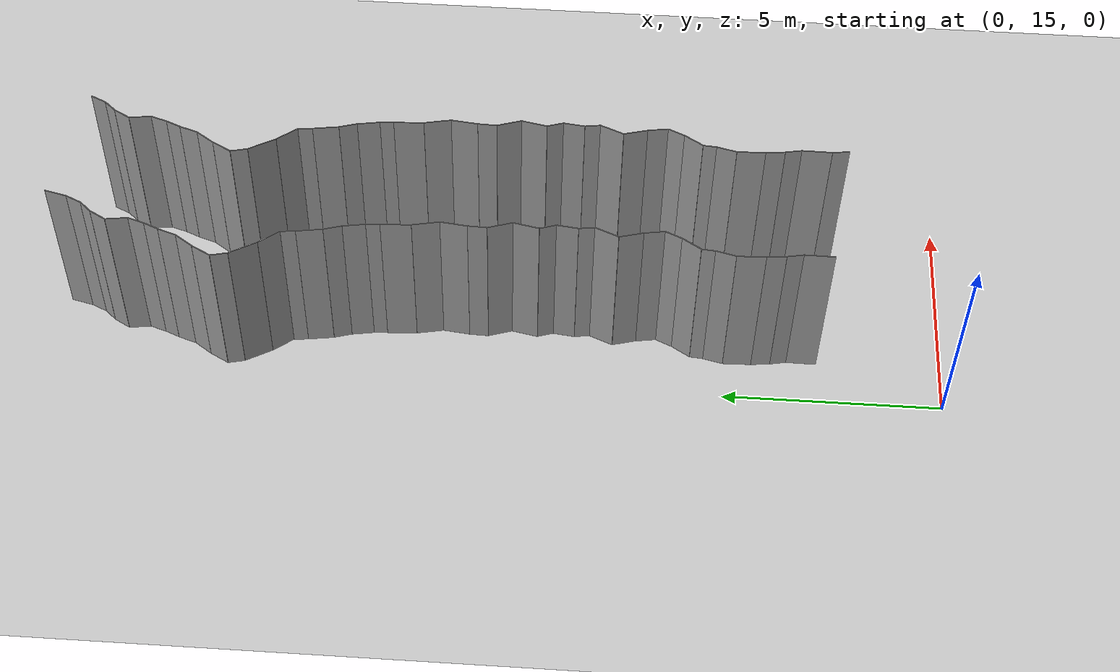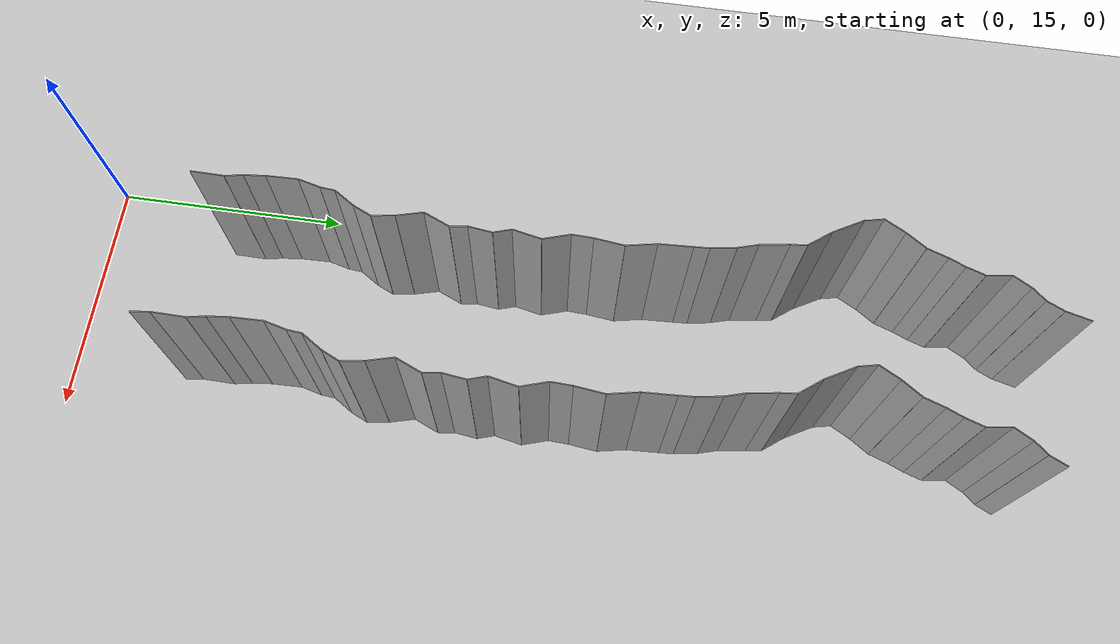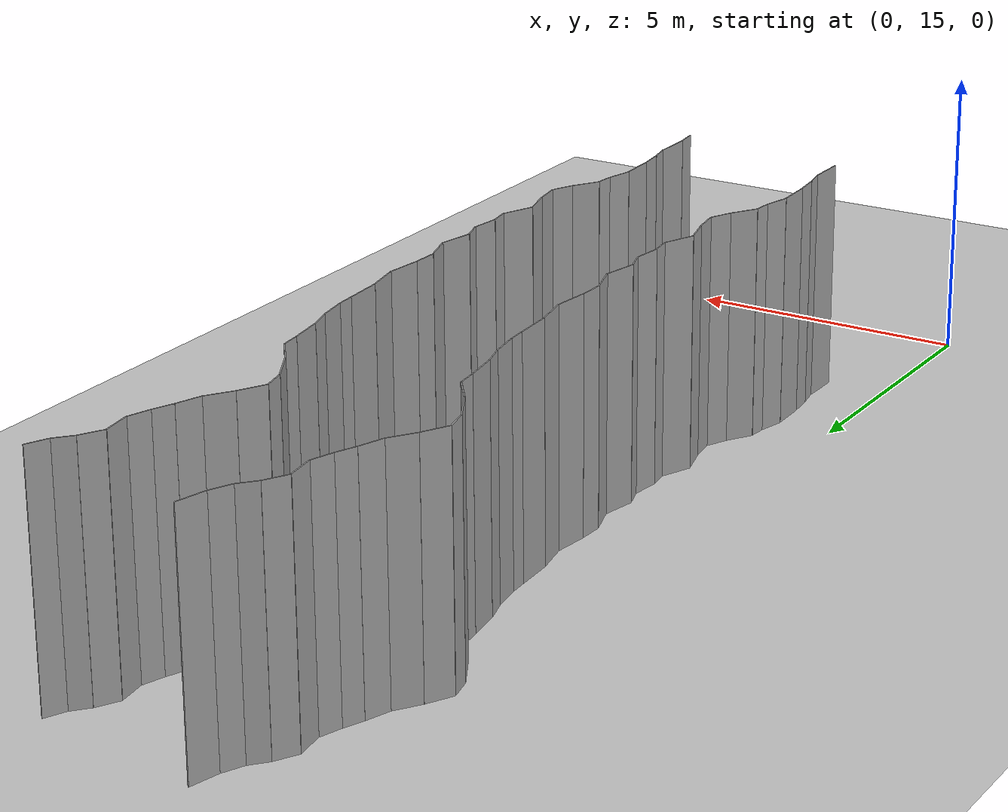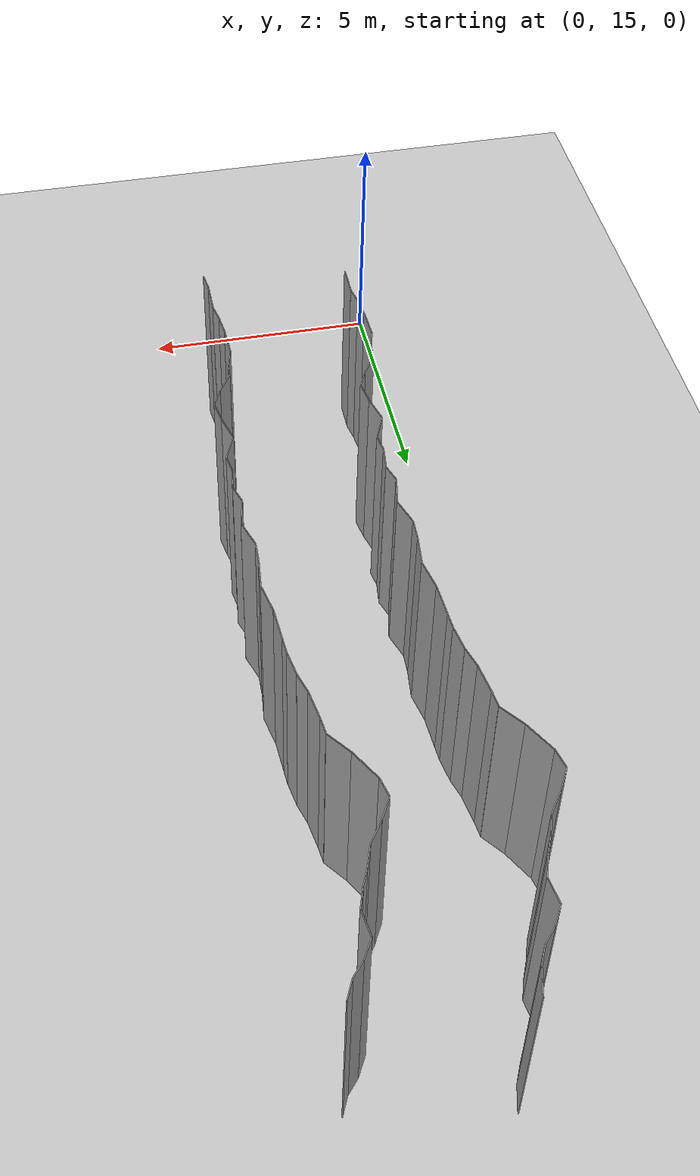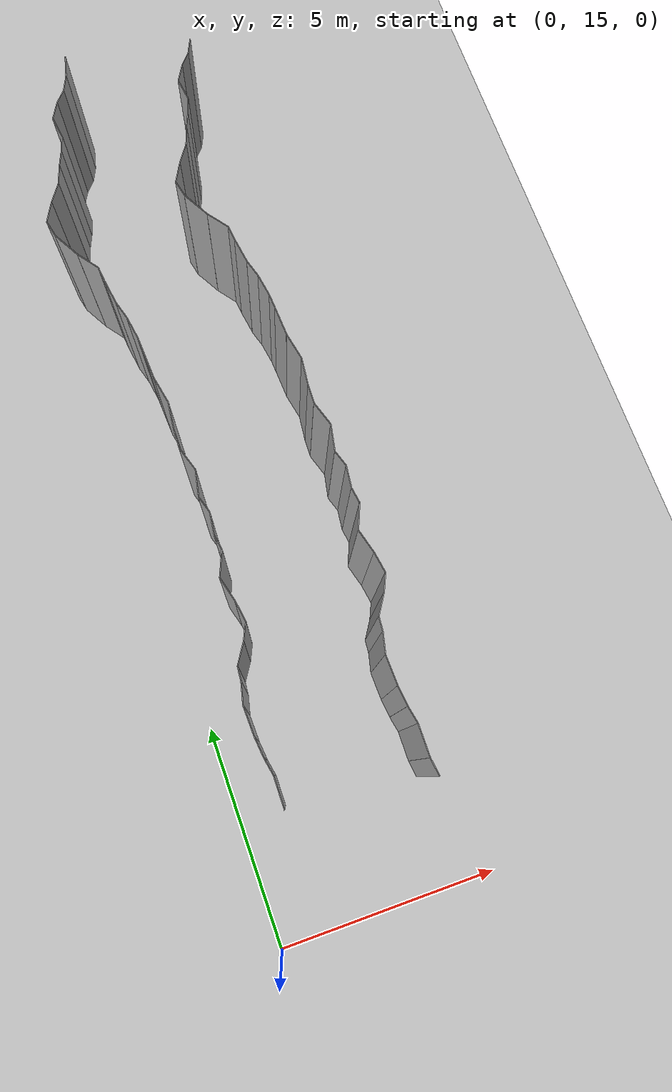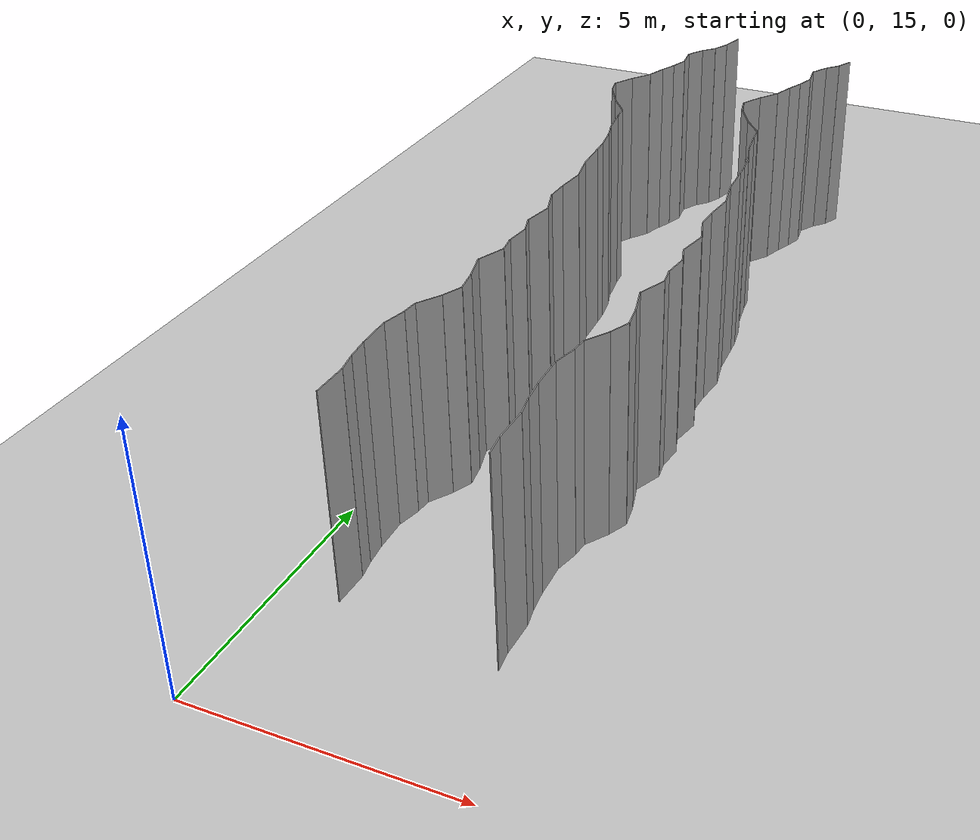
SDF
<sdf version="1.6">
 <world name="default">
  <model name="ground_plane">
   <static>1</static>
   <link name="link">
    <collision name="collision">
     <geometry><plane><normal>0 0 1</normal><size>200 200</size></plane></geometry>
     <surface><friction><ode><mu>100</mu><mu2>50</mu2></ode></friction></surface>
    </collision>
    <visual name="visual">
     <cast_shadows>0</cast_shadows>
     <geometry><plane><normal>0 0 1</normal><size>200 200</size></plane></geometry>
     <material>
      <script><uri>file://media/materials/scripts/gazebo.material</uri><name>Gazebo/Grey</name></script>
     </material>
    </visual>
   </link>
   <pose>0 100 0 0 -0 0</pose>
  </model>
  <model name="wall_73">
   <static>1</static>
   <pose>4.092621282615033 17.648242752760275 2 0 0 0.12257401669416847</pose>
   <link name="link">
    <collision name="collision"><geometry><box><size>0.02 0.392041348736 4</size></box></geometry></collision>
    <visual name="visual">
     <material>
      <script><name>Gazebo/Grey</name><uri>file://media/materials/scripts/gazebo.material</uri></script>
     </material>
     <geometry><box><size>0.02 0.392041348736 4</size></box></geometry>
    </visual>
   </link>
  </model>
  <model name="wall_74">
   <static>1</static>
   <pose>1.0732388111341435 18.187690049476906 2 0 0 -0.013291433530990255</pose>
   <link name="link">
    <collision name="collision"><geometry><box><size>0.02 0.689855584977 4</size></box></geometry></collision>
    <visual name="visual">
     <material>
      <script><name>Gazebo/Grey</name><uri>file://media/materials/scripts/gazebo.material</uri></script>
     </material>
     <geometry><box><size>0.02 0.689855584977 4</size></box></geometry>
    </visual>
   </link>
  </model>
  <model name="wall_75">
   <static>1</static>
   <pose>4.073238811134144 18.187690049476906 2 0 0 -0.013291433530990255</pose>
   <link name="link">
    <collision name="collision"><geometry><box><size>0.02 0.689855584977 4</size></box></geometry></collision>
    <visual name="visual">
     <material>
      <script><name>Gazebo/Grey</name><uri>file://media/materials/scripts/gazebo.material</uri></script>
     </material>
     <geometry><box><size>0.02 0.689855584977 4</size></box></geometry>
    </visual>
   </link>
  </model>
  <model name="wall_76">
   <static>1</static>
   <pose>1.0426178718898724 18.718711920294794 2 0 0 0.18694107810248098</pose>
   <link name="link">
    <collision name="collision"><geometry><box><size>0.02 0.378849658545 4</size></box></geometry></collision>
    <visual name="visual">
     <material>
      <script><name>Gazebo/Grey</name><uri>file://media/materials/scripts/gazebo.material</uri></script>
     </material>
     <geometry><box><size>0.02 0.378849658545 4</size></box></geometry>
    </visual>
   </link>
  </model>
  <model name="wall_77">
   <static>1</static>
   <pose>4.042617871889872 18.718711920294794 2 0 0 0.18694107810248098</pose>
   <link name="link">
    <collision name="collision"><geometry><box><size>0.02 0.378849658545 4</size></box></geometry></collision>
    <visual name="visual">
     <material>
      <script><name>Gazebo/Grey</name><uri>file://media/materials/scripts/gazebo.material</uri></script>
     </material>
     <geometry><box><size>0.02 0.378849658545 4</size></box></geometry>
    </visual>
   </link>
  </model>
  <model name="wall_78">
   <static>1</static>
   <pose>0.984165804529893 19.12431182267841 2 0 0 0.10552585542111075</pose>
   <link name="link">
    <collision name="collision"><geometry><box><size>0.02 0.44140611789 4</size></box></geometry></collision>
    <visual name="visual">
     <material>
      <script><name>Gazebo/Grey</name><uri>file://media/materials/scripts/gazebo.material</uri></script>
     </material>
     <geometry><box><size>0.02 0.44140611789 4</size></box></geometry>
    </visual>
   </link>
  </model>
  <model name="wall_79">
   <static>1</static>
   <pose>3.984165804529893 19.12431182267841 2 0 0 0.10552585542111075</pose>
   <link name="link">
    <collision name="collision"><geometry><box><size>0.02 0.44140611789 4</size></box></geometry></collision>
    <visual name="visual">
     <material>
      <script><name>Gazebo/Grey</name><uri>file://media/materials/scripts/gazebo.material</uri></script>
     </material>
     <geometry><box><size>0.02 0.44140611789 4</size></box></geometry>
    </visual>
   </link>
  </model>
  <model name="wall_80">
   <static>1</static>
   <pose>0.9522264733393769 19.66814566279179 2 0 0 0.026793110684806543</pose>
   <link name="link">
    <collision name="collision"><geometry><box><size>0.02 0.648949884071 4</size></box></geometry></collision>
    <visual name="visual">
     <material>
      <script><name>Gazebo/Grey</name><uri>file://media/materials/scripts/gazebo.material</uri></script>
     </material>
     <geometry><box><size>0.02 0.648949884071 4</size></box></geometry>
    </visual>
   </link>
  </model>
  <model name="wall_81">
   <static>1</static>
   <pose>3.952226473339377 19.66814566279179 2 0 0 0.026793110684806543</pose>
   <link name="link">
    <collision name="collision"><geometry><box><size>0.02 0.648949884071 4</size></box></geometry></collision>
    <visual name="visual">
     <material>
      <script><name>Gazebo/Grey</name><uri>file://media/materials/scripts/gazebo.material</uri></script>
     </material>
     <geometry><box><size>0.02 0.648949884071 4</size></box></geometry>
    </visual>
   </link>
  </model>
  <model name="wall_82">
   <static>1</static>
   <pose>0.999917778118882 20.22018089528429 2 0 0 -0.2427648953907783</pose>
   <link name="link">
    <collision name="collision"><geometry><box><size>0.02 0.469109167397 4</size></box></geometry></collision>
    <visual name="visual">
     <material>
      <script><name>Gazebo/Grey</name><uri>file://media/materials/scripts/gazebo.material</uri></script>
     </material>
     <geometry><box><size>0.02 0.469109167397 4</size></box></geometry>
    </visual>
   </link>
  </model>
  <model name="wall_83">
   <static>1</static>
   <pose>3.999917778118882 20.22018089528429 2 0 0 -0.2427648953907783</pose>
   <link name="link">
    <collision name="collision"><geometry><box><size>0.02 0.469109167397 4</size></box></geometry></collision>
    <visual name="visual">
     <material>
      <script><name>Gazebo/Grey</name><uri>file://media/materials/scripts/gazebo.material</uri></script>
     </material>
     <geometry><box><size>0.02 0.469109167397 4</size></box></geometry>
    </visual>
   </link>
  </model>
  <model name="wall_84">
   <static>1</static>
   <pose>1.0703593852557751 20.60035841199715 2 0 0 -0.09192107058092057</pose>
   <link name="link">
    <collision name="collision"><geometry><box><size>0.02 0.306294640187 4</size></box></geometry></collision>
    <visual name="visual">
     <material>
      <script><name>Gazebo/Grey</name><uri>file://media/materials/scripts/gazebo.material</uri></script>
     </material>
     <geometry><box><size>0.02 0.306294640187 4</size></box></geometry>
    </visual>
   </link>
  </model>
  <model name="wall_85">
   <static>1</static>
   <pose>4.070359385255776 20.60035841199715 2 0 0 -0.09192107058092057</pose>
   <link name="link">
    <collision name="collision"><geometry><box><size>0.02 0.306294640187 4</size></box></geometry></collision>
    <visual name="visual">
     <material>
      <script><name>Gazebo/Grey</name><uri>file://media/materials/scripts/gazebo.material</uri></script>
     </material>
     <geometry><box><size>0.02 0.306294640187 4</size></box></geometry>
    </visual>
   </link>
  </model>
  <model name="wall_86">
   <static>1</static>
   <pose>1.2197243580437185 20.964426863213383 2 0 0 -0.5689912407904951</pose>
   <link name="link">
    <collision name="collision"><geometry><box><size>0.02 0.502270669925 4</size></box></geometry></collision>
    <visual name="visual">
     <material>
      <script><name>Gazebo/Grey</name><uri>file://media/materials/scripts/gazebo.material</uri></script>
     </material>
     <geometry><box><size>0.02 0.502270669925 4</size></box></geometry>
    </visual>
   </link>
  </model>
  <model name="wall_87">
   <static>1</static>
   <pose>4.2197243580437185 20.964426863213383 2 0 0 -0.5689912407904951</pose>
   <link name="link">
    <collision name="collision"><geometry><box><size>0.02 0.502270669925 4</size></box></geometry></collision>
    <visual name="visual">
     <material>
      <script><name>Gazebo/Grey</name><uri>file://media/materials/scripts/gazebo.material</uri></script>
     </material>
     <geometry><box><size>0.02 0.502270669925 4</size></box></geometry>
    </visual>
   </link>
  </model>
  <model name="wall_88">
   <static>1</static>
   <pose>1.4400954261748624 21.362892633939776 2 0 0 -0.4271154657616282</pose>
   <link name="link">
    <collision name="collision"><geometry><box><size>0.02 0.410690811552 4</size></box></geometry></collision>
    <visual name="visual">
     <material>
      <script><name>Gazebo/Grey</name><uri>file://media/materials/scripts/gazebo.material</uri></script>
     </material>
     <geometry><box><size>0.02 0.410690811552 4</size></box></geometry>
    </visual>
   </link>
  </model>
  <model name="wall_89">
   <static>1</static>
   <pose>4.440095426174862 21.362892633939776 2 0 0 -0.4271154657616282</pose>
   <link name="link">
    <collision name="collision"><geometry><box><size>0.02 0.410690811552 4</size></box></geometry></collision>
    <visual name="visual">
     <material>
      <script><name>Gazebo/Grey</name><uri>file://media/materials/scripts/gazebo.material</uri></script>
     </material>
     <geometry><box><size>0.02 0.410690811552 4</size></box></geometry>
    </visual>
   </link>
  </model>
  <model name="wall_90">
   <static>1</static>
   <pose>1.4885717961698095 21.78343672002064 2 0 0 0.1553317458123357</pose>
   <link name="link">
    <collision name="collision"><geometry><box><size>0.02 0.472986633173 4</size></box></geometry></collision>
    <visual name="visual">
     <material>
      <script><name>Gazebo/Grey</name><uri>file://media/materials/scripts/gazebo.material</uri></script>
     </material>
     <geometry><box><size>0.02 0.472986633173 4</size></box></geometry>
    </visual>
   </link>
  </model>
  <model name="wall_91">
   <static>1</static>
   <pose>4.4885717961698095 21.78343672002064 2 0 0 0.1553317458123357</pose>
   <link name="link">
    <collision name="collision"><geometry><box><size>0.02 0.472986633173 4</size></box></geometry></collision>
    <visual name="visual">
     <material>
      <script><name>Gazebo/Grey</name><uri>file://media/materials/scripts/gazebo.material</uri></script>
     </material>
     <geometry><box><size>0.02 0.472986633173 4</size></box></geometry>
    </visual>
   </link>
  </model>
  <model name="wall_92">
   <static>1</static>
   <pose>1.3795995969330204 22.286802015279942 2 0 0 0.262192853696088</pose>
   <link name="link">
    <collision name="collision"><geometry><box><size>0.02 0.558526853949 4</size></box></geometry></collision>
    <visual name="visual">
     <material>
      <script><name>Gazebo/Grey</name><uri>file://media/materials/scripts/gazebo.material</uri></script>
     </material>
     <geometry><box><size>0.02 0.558526853949 4</size></box></geometry>
    </visual>
   </link>
  </model>
  <model name="wall_93">
   <static>1</static>
   <pose>4.37959959693302 22.286802015279942 2 0 0 0.262192853696088</pose>
   <link name="link">
    <collision name="collision"><geometry><box><size>0.02 0.558526853949 4</size></box></geometry></collision>
    <visual name="visual">
     <material>
      <script><name>Gazebo/Grey</name><uri>file://media/materials/scripts/gazebo.material</uri></script>
     </material>
     <geometry><box><size>0.02 0.558526853949 4</size></box></geometry>
    </visual>
   </link>
  </model>
  <model name="wall_94">
   <static>1</static>
   <pose>1.4200887107555116 22.825071893344607 2 0 0 -0.39788971634565296</pose>
   <link name="link">
    <collision name="collision"><geometry><box><size>0.02 0.582614592567 4</size></box></geometry></collision>
    <visual name="visual">
     <material>
      <script><name>Gazebo/Grey</name><uri>file://media/materials/scripts/gazebo.material</uri></script>
     </material>
     <geometry><box><size>0.02 0.582614592567 4</size></box></geometry>
    </visual>
   </link>
  </model>
  <model name="wall_95">
   <static>1</static>
   <pose>4.420088710755511 22.825071893344607 2 0 0 -0.39788971634565296</pose>
   <link name="link">
    <collision name="collision"><geometry><box><size>0.02 0.582614592567 4</size></box></geometry></collision>
    <visual name="visual">
     <material>
      <script><name>Gazebo/Grey</name><uri>file://media/materials/scripts/gazebo.material</uri></script>
     </material>
     <geometry><box><size>0.02 0.582614592567 4</size></box></geometry>
    </visual>
   </link>
  </model>
  <model name="wall_96">
   <static>1</static>
   <pose>1.5070654139472777 23.269632838606924 2 0 0 0.14608654406784802</pose>
   <link name="link">
    <collision name="collision"><geometry><box><size>0.02 0.355810707363 4</size></box></geometry></collision>
    <visual name="visual">
     <material>
      <script><name>Gazebo/Grey</name><uri>file://media/materials/scripts/gazebo.material</uri></script>
     </material>
     <geometry><box><size>0.02 0.355810707363 4</size></box></geometry>
    </visual>
   </link>
  </model>
  <model name="wall_97">
   <static>1</static>
   <pose>4.507065413947277 23.269632838606924 2 0 0 0.14608654406784802</pose>
   <link name="link">
    <collision name="collision"><geometry><box><size>0.02 0.355810707363 4</size></box></geometry></collision>
    <visual name="visual">
     <material>
      <script><name>Gazebo/Grey</name><uri>file://media/materials/scripts/gazebo.material</uri></script>
     </material>
     <geometry><box><size>0.02 0.355810707363 4</size></box></geometry>
    </visual>
   </link>
  </model>
  <model name="wall_98">
   <static>1</static>
   <pose>1.5121322555148535 23.691923645207986 2 0 0 -0.12507064737068507</pose>
   <link name="link">
    <collision name="collision"><geometry><box><size>0.02 0.49643863936 4</size></box></geometry></collision>
    <visual name="visual">
     <material>
      <script><name>Gazebo/Grey</name><uri>file://media/materials/scripts/gazebo.material</uri></script>
     </material>
     <geometry><box><size>0.02 0.49643863936 4</size></box></geometry>
    </visual>
   </link>
  </model>
  <model name="wall_99">
   <static>1</static>
   <pose>4.512132255514853 23.691923645207986 2 0 0 -0.12507064737068507</pose>
   <link name="link">
    <collision name="collision"><geometry><box><size>0.02 0.49643863936 4</size></box></geometry></collision>
    <visual name="visual">
     <material>
      <script><name>Gazebo/Grey</name><uri>file://media/materials/scripts/gazebo.material</uri></script>
     </material>
     <geometry><box><size>0.02 0.49643863936 4</size></box></geometry>
    </visual>
   </link>
  </model>
  <model name="wall_100">
   <static>1</static>
   <pose>1.4843065451263833 24.121478863662503 2 0 0 0.3104049121054471</pose>
   <link name="link">
    <collision name="collision"><geometry><box><size>0.02 0.384946138392 4</size></box></geometry></collision>
    <visual name="visual">
     <material>
      <script><name>Gazebo/Grey</name><uri>file://media/materials/scripts/gazebo.material</uri></script>
     </material>
     <geometry><box><size>0.02 0.384946138392 4</size></box></geometry>
    </visual>
   </link>
  </model>
  <model name="wall_101">
   <static>1</static>
   <pose>4.484306545126383 24.121478863662503 2 0 0 0.3104049121054471</pose>
   <link name="link">
    <collision name="collision"><geometry><box><size>0.02 0.384946138392 4</size></box></geometry></collision>
    <visual name="visual">
     <material>
      <script><name>Gazebo/Grey</name><uri>file://media/materials/scripts/gazebo.material</uri></script>
     </material>
     <geometry><box><size>0.02 0.384946138392 4</size></box></geometry>
    </visual>
   </link>
  </model>
  <model name="wall_102">
   <static>1</static>
   <pose>1.4854282498755527 24.600153610579614 2 0 0 -0.20010064578799164</pose>
   <link name="link">
    <collision name="collision"><geometry><box><size>0.02 0.602828433325 4</size></box></geometry></collision>
    <visual name="visual">
     <material>
      <script><name>Gazebo/Grey</name><uri>file://media/materials/scripts/gazebo.material</uri></script>
     </material>
     <geometry><box><size>0.02 0.602828433325 4</size></box></geometry>
    </visual>
   </link>
  </model>
  <model name="wall_103">
   <static>1</static>
   <pose>4.485428249875553 24.600153610579614 2 0 0 -0.20010064578799164</pose>
   <link name="link">
    <collision name="collision"><geometry><box><size>0.02 0.602828433325 4</size></box></geometry></collision>
    <visual name="visual">
     <material>
      <script><name>Gazebo/Grey</name><uri>file://media/materials/scripts/gazebo.material</uri></script>
     </material>
     <geometry><box><size>0.02 0.602828433325 4</size></box></geometry>
    </visual>
   </link>
  </model>
  <model name="wall_104">
   <static>1</static>
   <pose>1.457321717487417 25.171844485014564 2 0 0 0.3084053393774885</pose>
   <link name="link">
    <collision name="collision"><geometry><box><size>0.02 0.579944258103 4</size></box></geometry></collision>
    <visual name="visual">
     <material>
      <script><name>Gazebo/Grey</name><uri>file://media/materials/scripts/gazebo.material</uri></script>
     </material>
     <geometry><box><size>0.02 0.579944258103 4</size></box></geometry>
    </visual>
   </link>
  </model>
  <model name="wall_105">
   <static>1</static>
   <pose>4.457321717487417 25.171844485014564 2 0 0 0.3084053393774885</pose>
   <link name="link">
    <collision name="collision"><geometry><box><size>0.02 0.579944258103 4</size></box></geometry></collision>
    <visual name="visual">
     <material>
      <script><name>Gazebo/Grey</name><uri>file://media/materials/scripts/gazebo.material</uri></script>
     </material>
     <geometry><box><size>0.02 0.579944258103 4</size></box></geometry>
    </visual>
   </link>
  </model>
  <model name="wall_106">
   <static>1</static>
   <pose>1.377726087445297 25.66655482107098 2 0 0 -0.038541549368307934</pose>
   <link name="link">
    <collision name="collision"><geometry><box><size>0.02 0.437163518539 4</size></box></geometry></collision>
    <visual name="visual">
     <material>
      <script><name>Gazebo/Grey</name><uri>file://media/materials/scripts/gazebo.material</uri></script>
     </material>
     <geometry><box><size>0.02 0.437163518539 4</size></box></geometry>
    </visual>
   </link>
  </model>
  <model name="wall_107">
   <static>1</static>
   <pose>4.377726087445297 25.66655482107098 2 0 0 -0.038541549368307934</pose>
   <link name="link">
    <collision name="collision"><geometry><box><size>0.02 0.437163518539 4</size></box></geometry></collision>
    <visual name="visual">
     <material>
      <script><name>Gazebo/Grey</name><uri>file://media/materials/scripts/gazebo.material</uri></script>
     </material>
     <geometry><box><size>0.02 0.437163518539 4</size></box></geometry>
    </visual>
   </link>
  </model>
  <model name="wall_108">
   <static>1</static>
   <pose>1.42149232647605 26.19156125016328 2 0 0 -0.11477495992342664</pose>
   <link name="link">
    <collision name="collision"><geometry><box><size>0.02 0.617235039428 4</size></box></geometry></collision>
    <visual name="visual">
     <material>
      <script><name>Gazebo/Grey</name><uri>file://media/materials/scripts/gazebo.material</uri></script>
     </material>
     <geometry><box><size>0.02 0.617235039428 4</size></box></geometry>
    </visual>
   </link>
  </model>
  <model name="wall_109">
   <static>1</static>
   <pose>4.42149232647605 26.19156125016328 2 0 0 -0.11477495992342664</pose>
   <link name="link">
    <collision name="collision"><geometry><box><size>0.02 0.617235039428 4</size></box></geometry></collision>
    <visual name="visual">
     <material>
      <script><name>Gazebo/Grey</name><uri>file://media/materials/scripts/gazebo.material</uri></script>
     </material>
     <geometry><box><size>0.02 0.617235039428 4</size></box></geometry>
    </visual>
   </link>
  </model>
  <model name="wall_110">
   <static>1</static>
   <pose>1.395403315510195 26.806106222543683 2 0 0 0.19689987803061043</pose>
   <link name="link">
    <collision name="collision"><geometry><box><size>0.02 0.628051306856 4</size></box></geometry></collision>
    <visual name="visual">
     <material>
      <script><name>Gazebo/Grey</name><uri>file://media/materials/scripts/gazebo.material</uri></script>
     </material>
     <geometry><box><size>0.02 0.628051306856 4</size></box></geometry>
    </visual>
   </link>
  </model>
  <model name="wall_111">
   <static>1</static>
   <pose>4.395403315510195 26.806106222543683 2 0 0 0.19689987803061043</pose>
   <link name="link">
    <collision name="collision"><geometry><box><size>0.02 0.628051306856 4</size></box></geometry></collision>
    <visual name="visual">
     <material>
      <script><name>Gazebo/Grey</name><uri>file://media/materials/scripts/gazebo.material</uri></script>
     </material>
     <geometry><box><size>0.02 0.628051306856 4</size></box></geometry>
    </visual>
   </link>
  </model>
  <model name="wall_112">
   <static>1</static>
   <pose>1.3165889341152652 27.457846044877233 2 0 0 0.05051673808590711</pose>
   <link name="link">
    <collision name="collision"><geometry><box><size>0.02 0.688441936609 4</size></box></geometry></collision>
    <visual name="visual">
     <material>
      <script><name>Gazebo/Grey</name><uri>file://media/materials/scripts/gazebo.material</uri></script>
     </material>
     <geometry><box><size>0.02 0.688441936609 4</size></box></geometry>
    </visual>
   </link>
  </model>
  <model name="wall_113">
   <static>1</static>
   <pose>4.3165889341152655 27.457846044877233 2 0 0 0.05051673808590711</pose>
   <link name="link">
    <collision name="collision"><geometry><box><size>0.02 0.688441936609 4</size></box></geometry></collision>
    <visual name="visual">
     <material>
      <script><name>Gazebo/Grey</name><uri>file://media/materials/scripts/gazebo.material</uri></script>
     </material>
     <geometry><box><size>0.02 0.688441936609 4</size></box></geometry>
    </visual>
   </link>
  </model>
  <model name="wall_114">
   <static>1</static>
   <pose>1.2899790149392374 27.958058768002058 2 0 0 0.0589251334920315</pose>
   <link name="link">
    <collision name="collision"><geometry><box><size>0.02 0.313405696115 4</size></box></geometry></collision>
    <visual name="visual">
     <material>
      <script><name>Gazebo/Grey</name><uri>file://media/materials/scripts/gazebo.material</uri></script>
     </material>
     <geometry><box><size>0.02 0.313405696115 4</size></box></geometry>
    </visual>
   </link>
  </model>
  <model name="wall_115">
   <static>1</static>
   <pose>4.289979014939237 27.958058768002058 2 0 0 0.0589251334920315</pose>
   <link name="link">
    <collision name="collision"><geometry><box><size>0.02 0.313405696115 4</size></box></geometry></collision>
    <visual name="visual">
     <material>
      <script><name>Gazebo/Grey</name><uri>file://media/materials/scripts/gazebo.material</uri></script>
     </material>
     <geometry><box><size>0.02 0.313405696115 4</size></box></geometry>
    </visual>
   </link>
  </model>
  <model name="wall_116">
   <static>1</static>
   <pose>1.2392649363602533 28.370317719643566 2 0 0 0.16076293576960132</pose>
   <link name="link">
    <collision name="collision"><geometry><box><size>0.02 0.518339910596 4</size></box></geometry></collision>
    <visual name="visual">
     <material>
      <script><name>Gazebo/Grey</name><uri>file://media/materials/scripts/gazebo.material</uri></script>
     </material>
     <geometry><box><size>0.02 0.518339910596 4</size></box></geometry>
    </visual>
   </link>
  </model>
  <model name="wall_117">
   <static>1</static>
   <pose>4.239264936360254 28.370317719643566 2 0 0 0.16076293576960132</pose>
   <link name="link">
    <collision name="collision"><geometry><box><size>0.02 0.518339910596 4</size></box></geometry></collision>
    <visual name="visual">
     <material>
      <script><name>Gazebo/Grey</name><uri>file://media/materials/scripts/gazebo.material</uri></script>
     </material>
     <geometry><box><size>0.02 0.518339910596 4</size></box></geometry>
    </visual>
   </link>
  </model>
  <model name="wall_118">
   <static>1</static>
   <pose>1.1379006756525216 28.829499193761478 2 0 0 0.28636258792526653</pose>
   <link name="link">
    <collision name="collision"><geometry><box><size>0.02 0.423971928293 4</size></box></geometry></collision>
    <visual name="visual">
     <material>
      <script><name>Gazebo/Grey</name><uri>file://media/materials/scripts/gazebo.material</uri></script>
     </material>
     <geometry><box><size>0.02 0.423971928293 4</size></box></geometry>
    </visual>
   </link>
  </model>
  <model name="wall_119">
   <static>1</static>
   <pose>4.137900675652522 28.829499193761478 2 0 0 0.28636258792526653</pose>
   <link name="link">
    <collision name="collision"><geometry><box><size>0.02 0.423971928293 4</size></box></geometry></collision>
    <visual name="visual">
     <material>
      <script><name>Gazebo/Grey</name><uri>file://media/materials/scripts/gazebo.material</uri></script>
     </material>
     <geometry><box><size>0.02 0.423971928293 4</size></box></geometry>
    </visual>
   </link>
  </model>
  <model name="wall_120">
   <static>1</static>
   <pose>1.0334668552029895 29.32919298641795 2 0 0 0.14923376800048754</pose>
   <link name="link">
    <collision name="collision"><geometry><box><size>0.02 0.599342300667 4</size></box></geometry></collision>
    <visual name="visual">
     <material>
      <script><name>Gazebo/Grey</name><uri>file://media/materials/scripts/gazebo.material</uri></script>
     </material>
     <geometry><box><size>0.02 0.599342300667 4</size></box></geometry>
    </visual>
   </link>
  </model>
  <model name="wall_121">
   <static>1</static>
   <pose>4.03346685520299 29.32919298641795 2 0 0 0.14923376800048754</pose>
   <link name="link">
    <collision name="collision"><geometry><box><size>0.02 0.599342300667 4</size></box></geometry></collision>
    <visual name="visual">
     <material>
      <script><name>Gazebo/Grey</name><uri>file://media/materials/scripts/gazebo.material</uri></script>
     </material>
     <geometry><box><size>0.02 0.599342300667 4</size></box></geometry>
    </visual>
   </link>
  </model>
  <model name="wall_122">
   <static>1</static>
   <pose>0.971554940159362 29.79262525082006 2 0 0 0.1035038091336709</pose>
   <link name="link">
    <collision name="collision"><geometry><box><size>0.02 0.335981829866 4</size></box></geometry></collision>
    <visual name="visual">
     <material>
      <script><name>Gazebo/Grey</name><uri>file://media/materials/scripts/gazebo.material</uri></script>
     </material>
     <geometry><box><size>0.02 0.335981829866 4</size></box></geometry>
    </visual>
   </link>
  </model>
  <model name="wall_123">
   <static>1</static>
   <pose>3.971554940159362 29.79262525082006 2 0 0 0.1035038091336709</pose>
   <link name="link">
    <collision name="collision"><geometry><box><size>0.02 0.335981829866 4</size></box></geometry></collision>
    <visual name="visual">
     <material>
      <script><name>Gazebo/Grey</name><uri>file://media/materials/scripts/gazebo.material</uri></script>
     </material>
     <geometry><box><size>0.02 0.335981829866 4</size></box></geometry>
    </visual>
   </link>
  </model>
  <model name="wall_124">
   <static>1</static>
   <pose>0.7837115606883329 30.185210513473624 2 0 0 0.6473687365850009</pose>
   <link name="link">
    <collision name="collision"><geometry><box><size>0.02 0.565377705506 4</size></box></geometry></collision>
    <visual name="visual">
     <material>
      <script><name>Gazebo/Grey</name><uri>file://media/materials/scripts/gazebo.material</uri></script>
     </material>
     <geometry><box><size>0.02 0.565377705506 4</size></box></geometry>
    </visual>
   </link>
  </model>
  <model name="wall_125">
   <static>1</static>
   <pose>3.783711560688333 30.185210513473624 2 0 0 0.6473687365850009</pose>
   <link name="link">
    <collision name="collision"><geometry><box><size>0.02 0.565377705506 4</size></box></geometry></collision>
    <visual name="visual">
     <material>
      <script><name>Gazebo/Grey</name><uri>file://media/materials/scripts/gazebo.material</uri></script>
     </material>
     <geometry><box><size>0.02 0.565377705506 4</size></box></geometry>
    </visual>
   </link>
  </model>
  <model name="wall_126">
   <static>1</static>
   <pose>0.44509544474061985 30.710607295120393 2 0 0 0.5109540127612698</pose>
   <link name="link">
    <collision name="collision"><geometry><box><size>0.02 0.687632288441 4</size></box></geometry></collision>
    <visual name="visual">
     <material>
      <script><name>Gazebo/Grey</name><uri>file://media/materials/scripts/gazebo.material</uri></script>
     </material>
     <geometry><box><size>0.02 0.687632288441 4</size></box></geometry>
    </visual>
   </link>
  </model>
  <model name="wall_127">
   <static>1</static>
   <pose>3.4450954447406197 30.710607295120393 2 0 0 0.5109540127612698</pose>
   <link name="link">
    <collision name="collision"><geometry><box><size>0.02 0.687632288441 4</size></box></geometry></collision>
    <visual name="visual">
     <material>
      <script><name>Gazebo/Grey</name><uri>file://media/materials/scripts/gazebo.material</uri></script>
     </material>
     <geometry><box><size>0.02 0.687632288441 4</size></box></geometry>
    </visual>
   </link>
  </model>
  <model name="wall_128">
   <static>1</static>
   <pose>0.23415790016539317 31.202269444634137 2 0 0 0.21963818351595232</pose>
   <link name="link">
    <collision name="collision"><geometry><box><size>0.02 0.392957801035 4</size></box></geometry></collision>
    <visual name="visual">
     <material>
      <script><name>Gazebo/Grey</name><uri>file://media/materials/scripts/gazebo.material</uri></script>
     </material>
     <geometry><box><size>0.02 0.392957801035 4</size></box></geometry>
    </visual>
   </link>
  </model>
  <model name="wall_129">
   <static>1</static>
   <pose>3.234157900165393 31.202269444634137 2 0 0 0.21963818351595232</pose>
   <link name="link">
    <collision name="collision"><geometry><box><size>0.02 0.392957801035 4</size></box></geometry></collision>
    <visual name="visual">
     <material>
      <script><name>Gazebo/Grey</name><uri>file://media/materials/scripts/gazebo.material</uri></script>
     </material>
     <geometry><box><size>0.02 0.392957801035 4</size></box></geometry>
    </visual>
   </link>
  </model>
  <model name="wall_130">
   <static>1</static>
   <pose>0.3073425177581742 31.607362170318495 2 0 0 -0.49800463003651296</pose>
   <link name="link">
    <collision name="collision"><geometry><box><size>0.02 0.485657083069 4</size></box></geometry></collision>
    <visual name="visual">
     <material>
      <script><name>Gazebo/Grey</name><uri>file://media/materials/scripts/gazebo.material</uri></script>
     </material>
     <geometry><box><size>0.02 0.485657083069 4</size></box></geometry>
    </visual>
   </link>
  </model>
  <model name="wall_131">
   <static>1</static>
   <pose>3.3073425177581743 31.607362170318495 2 0 0 -0.49800463003651296</pose>
   <link name="link">
    <collision name="collision"><geometry><box><size>0.02 0.485657083069 4</size></box></geometry></collision>
    <visual name="visual">
     <material>
      <script><name>Gazebo/Grey</name><uri>file://media/materials/scripts/gazebo.material</uri></script>
     </material>
     <geometry><box><size>0.02 0.485657083069 4</size></box></geometry>
    </visual>
   </link>
  </model>
  <model name="wall_132">
   <static>1</static>
   <pose>0.5615684834087463 32.02083243274485 2 0 0 -0.6044539023892532</pose>
   <link name="link">
    <collision name="collision"><geometry><box><size>0.02 0.48646873426 4</size></box></geometry></collision>
    <visual name="visual">
     <material>
      <script><name>Gazebo/Grey</name><uri>file://media/materials/scripts/gazebo.material</uri></script>
     </material>
     <geometry><box><size>0.02 0.48646873426 4</size></box></geometry>
    </visual>
   </link>
  </model>
  <model name="wall_133">
   <static>1</static>
   <pose>3.561568483408746 32.02083243274485 2 0 0 -0.6044539023892532</pose>
   <link name="link">
    <collision name="collision"><geometry><box><size>0.02 0.48646873426 4</size></box></geometry></collision>
    <visual name="visual">
     <material>
      <script><name>Gazebo/Grey</name><uri>file://media/materials/scripts/gazebo.material</uri></script>
     </material>
     <geometry><box><size>0.02 0.48646873426 4</size></box></geometry>
    </visual>
   </link>
  </model>
  <model name="wall_134">
   <static>1</static>
   <pose>0.7716183599678742 32.431142840659305 2 0 0 -0.3292622935482228</pose>
   <link name="link">
    <collision name="collision"><geometry><box><size>0.02 0.444210719961 4</size></box></geometry></collision>
    <visual name="visual">
     <material>
      <script><name>Gazebo/Grey</name><uri>file://media/materials/scripts/gazebo.material</uri></script>
     </material>
     <geometry><box><size>0.02 0.444210719961 4</size></box></geometry>
    </visual>
   </link>
  </model>
  <model name="wall_135">
   <static>1</static>
   <pose>3.7716183599678743 32.431142840659305 2 0 0 -0.3292622935482228</pose>
   <link name="link">
    <collision name="collision"><geometry><box><size>0.02 0.444210719961 4</size></box></geometry></collision>
    <visual name="visual">
     <material>
      <script><name>Gazebo/Grey</name><uri>file://media/materials/scripts/gazebo.material</uri></script>
     </material>
     <geometry><box><size>0.02 0.444210719961 4</size></box></geometry>
    </visual>
   </link>
  </model>
  <model name="wall_136">
   <static>1</static>
   <pose>0.9136156325104724 32.80652656847838 2 0 0 -0.4016989852094035</pose>
   <link name="link">
    <collision name="collision"><geometry><box><size>0.02 0.35899601468 4</size></box></geometry></collision>
    <visual name="visual">
     <material>
      <script><name>Gazebo/Grey</name><uri>file://media/materials/scripts/gazebo.material</uri></script>
     </material>
     <geometry><box><size>0.02 0.35899601468 4</size></box></geometry>
    </visual>
   </link>
  </model>
  <model name="wall_137">
   <static>1</static>
   <pose>3.9136156325104725 32.80652656847838 2 0 0 -0.4016989852094035</pose>
   <link name="link">
    <collision name="collision"><geometry><box><size>0.02 0.35899601468 4</size></box></geometry></collision>
    <visual name="visual">
     <material>
      <script><name>Gazebo/Grey</name><uri>file://media/materials/scripts/gazebo.material</uri></script>
     </material>
     <geometry><box><size>0.02 0.35899601468 4</size></box></geometry>
    </visual>
   </link>
  </model>
  <model name="wall_138">
   <static>1</static>
   <pose>1.0450815797172224 33.15944056169987 2 0 0 -0.31558733294119184</pose>
   <link name="link">
    <collision name="collision"><geometry><box><size>0.02 0.394911769033 4</size></box></geometry></collision>
    <visual name="visual">
     <material>
      <script><name>Gazebo/Grey</name><uri>file://media/materials/scripts/gazebo.material</uri></script>
     </material>
     <geometry><box><size>0.02 0.394911769033 4</size></box></geometry>
    </visual>
   </link>
  </model>
  <model name="wall_139">
   <static>1</static>
   <pose>4.045081579717222 33.15944056169987 2 0 0 -0.31558733294119184</pose>
   <link name="link">
    <collision name="collision"><geometry><box><size>0.02 0.394911769033 4</size></box></geometry></collision>
    <visual name="visual">
     <material>
      <script><name>Gazebo/Grey</name><uri>file://media/materials/scripts/gazebo.material</uri></script>
     </material>
     <geometry><box><size>0.02 0.394911769033 4</size></box></geometry>
    </visual>
   </link>
  </model>
  <model name="wall_140">
   <static>1</static>
   <pose>1.0719061237984677 33.597831127662644 2 0 0 0.13660967273226057</pose>
   <link name="link">
    <collision name="collision"><geometry><box><size>0.02 0.50608739015 4</size></box></geometry></collision>
    <visual name="visual">
     <material>
      <script><name>Gazebo/Grey</name><uri>file://media/materials/scripts/gazebo.material</uri></script>
     </material>
     <geometry><box><size>0.02 0.50608739015 4</size></box></geometry>
    </visual>
   </link>
  </model>
  <model name="wall_141">
   <static>1</static>
   <pose>4.071906123798468 33.597831127662644 2 0 0 0.13660967273226057</pose>
   <link name="link">
    <collision name="collision"><geometry><box><size>0.02 0.50608739015 4</size></box></geometry></collision>
    <visual name="visual">
     <material>
      <script><name>Gazebo/Grey</name><uri>file://media/materials/scripts/gazebo.material</uri></script>
     </material>
     <geometry><box><size>0.02 0.50608739015 4</size></box></geometry>
    </visual>
   </link>
  </model>
  <model name="wall_142">
   <static>1</static>
   <pose>1.1404594368225895 34.03064386003069 2 0 0 -0.5147551168256888</pose>
   <link name="link">
    <collision name="collision"><geometry><box><size>0.02 0.418482901967 4</size></box></geometry></collision>
    <visual name="visual">
     <material>
      <script><name>Gazebo/Grey</name><uri>file://media/materials/scripts/gazebo.material</uri></script>
     </material>
     <geometry><box><size>0.02 0.418482901967 4</size></box></geometry>
    </visual>
   </link>
  </model>
  <model name="wall_143">
   <static>1</static>
   <pose>4.1404594368225895 34.03064386003069 2 0 0 -0.5147551168256888</pose>
   <link name="link">
    <collision name="collision"><geometry><box><size>0.02 0.418482901967 4</size></box></geometry></collision>
    <visual name="visual">
     <material>
      <script><name>Gazebo/Grey</name><uri>file://media/materials/scripts/gazebo.material</uri></script>
     </material>
     <geometry><box><size>0.02 0.418482901967 4</size></box></geometry>
    </visual>
   </link>
  </model>
  <model name="wall_144">
   <static>1</static>
   <pose>1.3578268943655711 34.341289612114586 2 0 0 -0.7271378578428268</pose>
   <link name="link">
    <collision name="collision"><geometry><box><size>0.02 0.34405740806 4</size></box></geometry></collision>
    <visual name="visual">
     <material>
      <script><name>Gazebo/Grey</name><uri>file://media/materials/scripts/gazebo.material</uri></script>
     </material>
     <geometry><box><size>0.02 0.34405740806 4</size></box></geometry>
    </visual>
   </link>
  </model>
  <model name="wall_145">
   <static>1</static>
   <pose>4.357826894365571 34.341289612114586 2 0 0 -0.7271378578428268</pose>
   <link name="link">
    <collision name="collision"><geometry><box><size>0.02 0.34405740806 4</size></box></geometry></collision>
    <visual name="visual">
     <material>
      <script><name>Gazebo/Grey</name><uri>file://media/materials/scripts/gazebo.material</uri></script>
     </material>
     <geometry><box><size>0.02 0.34405740806 4</size></box></geometry>
    </visual>
   </link>
  </model>
  <model name="wall_146">
   <static>1</static>
   <pose>1.5534066601929737 34.645198181476616 2 0 0 -0.43371125184709886</pose>
   <link name="link">
    <collision name="collision"><geometry><box><size>0.02 0.386570350683 4</size></box></geometry></collision>
    <visual name="visual">
     <material>
      <script><name>Gazebo/Grey</name><uri>file://media/materials/scripts/gazebo.material</uri></script>
     </material>
     <geometry><box><size>0.02 0.386570350683 4</size></box></geometry>
    </visual>
   </link>
  </model>
  <model name="wall_147">
   <static>1</static>
   <pose>4.553406660192974 34.645198181476616 2 0 0 -0.43371125184709886</pose>
   <link name="link">
    <collision name="collision"><geometry><box><size>0.02 0.386570350683 4</size></box></geometry></collision>
    <visual name="visual">
     <material>
      <script><name>Gazebo/Grey</name><uri>file://media/materials/scripts/gazebo.material</uri></script>
     </material>
     <geometry><box><size>0.02 0.386570350683 4</size></box></geometry>
    </visual>
   </link>
  </model>
  <model name="wall_148">
   <static>1</static>
   <pose>1.6969793171215999 35.0735303822355 2 0 0 -0.24166629643161994</pose>
   <link name="link">
    <collision name="collision"><geometry><box><size>0.02 0.5210264239 4</size></box></geometry></collision>
    <visual name="visual">
     <material>
      <script><name>Gazebo/Grey</name><uri>file://media/materials/scripts/gazebo.material</uri></script>
     </material>
     <geometry><box><size>0.02 0.5210264239 4</size></box></geometry>
    </visual>
   </link>
  </model>
 </world>
</sdf>
